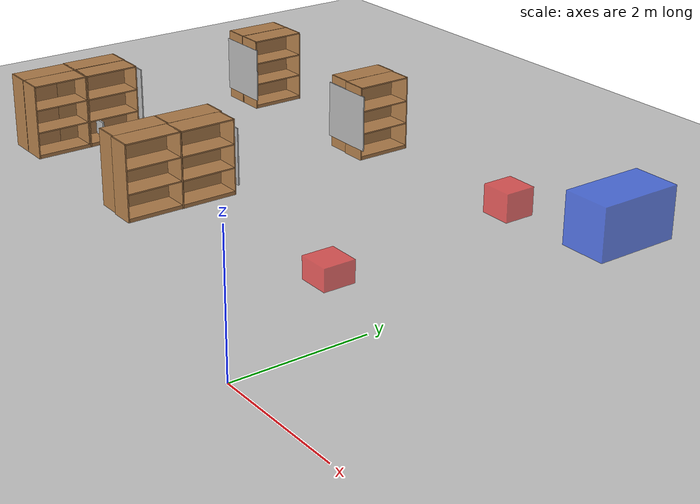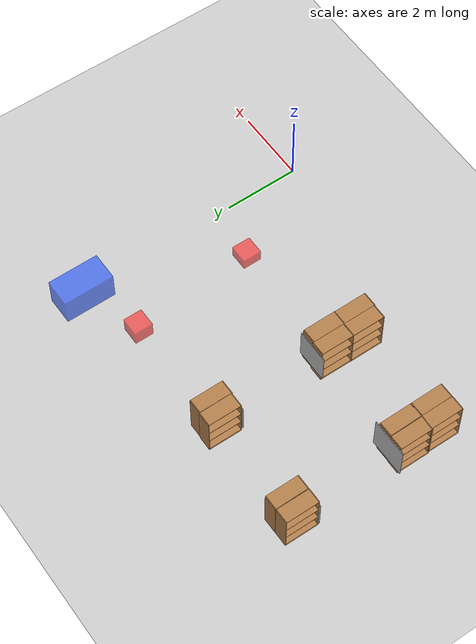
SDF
<sdf version="1.7">
 <world name="library_world">
  <model name="ground_plane">
   <static>1</static>
   <link name="link">
    <collision name="collision">
     <geometry><plane><normal>0 0 1</normal><size>100 100</size></plane></geometry>
     <surface>
      <contact><collide_bitmask>65535</collide_bitmask></contact>
      <friction><ode><mu>100</mu><mu2>50</mu2></ode></friction>
     </surface>
    </collision>
    <visual name="visual">
     <cast_shadows>0</cast_shadows>
     <geometry><plane><normal>0 0 1</normal><size>100 100</size></plane></geometry>
     <material>
      <script><uri>file://media/materials/scripts/gazebo.material</uri><name>Gazebo/Grey</name></script>
     </material>
    </visual>
   </link>
  </model>
  <model name="bookshelf_0_clone_2_clone_2">
   <static>1</static>
   <link name="link">
    <inertial><mass>1</mass></inertial>
    <collision name="back">
     <pose>0 0.005 0.6 0 -0 0</pose>
     <geometry><box><size>0.9 0.01 1.2</size></box></geometry>
    </collision>
    <visual name="visual1">
     <pose>0 0.005 0.6 0 -0 0</pose>
     <geometry><box><size>0.9 0.01 1.2</size></box></geometry>
     <material>
      <script><uri>file://media/materials/scripts/gazebo.material</uri><name>Gazebo/Wood</name></script>
     </material>
    </visual>
    <collision name="left_side">
     <pose>0.45 -0.195 0.6 0 -0 0</pose>
     <geometry><box><size>0.02 0.4 1.2</size></box></geometry>
    </collision>
    <visual name="visual2">
     <pose>0.45 -0.195 0.6 0 -0 0</pose>
     <geometry><box><size>0.02 0.4 1.2</size></box></geometry>
     <material>
      <script><uri>file://media/materials/scripts/gazebo.material</uri><name>Gazebo/Wood</name></script>
     </material>
    </visual>
    <collision name="right_side">
     <pose>-0.45 -0.195 0.6 0 -0 0</pose>
     <geometry><box><size>0.02 0.4 1.2</size></box></geometry>
    </collision>
    <visual name="visual3">
     <pose>-0.45 -0.195 0.6 0 -0 0</pose>
     <geometry><box><size>0.02 0.4 1.2</size></box></geometry>
     <material>
      <script><uri>file://media/materials/scripts/gazebo.material</uri><name>Gazebo/Wood</name></script>
     </material>
    </visual>
    <collision name="bottom">
     <pose>0 -0.195 0.03 0 -0 0</pose>
     <geometry><box><size>0.88 0.4 0.06</size></box></geometry>
    </collision>
    <visual name="visual4">
     <pose>0 -0.195 0.03 0 -0 0</pose>
     <geometry><box><size>0.88 0.4 0.06</size></box></geometry>
     <material>
      <script><uri>file://media/materials/scripts/gazebo.material</uri><name>Gazebo/Wood</name></script>
     </material>
    </visual>
    <collision name="top">
     <pose>0 -0.195 1.19 0 -0 0</pose>
     <geometry><box><size>0.88 0.4 0.02</size></box></geometry>
    </collision>
    <visual name="visual5">
     <pose>0 -0.195 1.19 0 -0 0</pose>
     <geometry><box><size>0.88 0.4 0.02</size></box></geometry>
     <material>
      <script><uri>file://media/materials/scripts/gazebo.material</uri><name>Gazebo/Wood</name></script>
     </material>
    </visual>
    <collision name="low_shelf">
     <pose>0 -0.195 0.43 0 -0 0</pose>
     <geometry><box><size>0.88 0.4 0.02</size></box></geometry>
    </collision>
    <visual name="visual6">
     <pose>0 -0.195 0.43 0 -0 0</pose>
     <geometry><box><size>0.88 0.4 0.02</size></box></geometry>
     <material>
      <script><uri>file://media/materials/scripts/gazebo.material</uri><name>Gazebo/Wood</name></script>
     </material>
    </visual>
    <collision name="high_shelf">
     <pose>0 -0.195 0.8 0 -0 0</pose>
     <geometry><box><size>0.88 0.4 0.02</size></box></geometry>
    </collision>
    <visual name="visual7">
     <pose>0 -0.195 0.8 0 -0 0</pose>
     <geometry><box><size>0.88 0.4 0.02</size></box></geometry>
     <material>
      <script><uri>file://media/materials/scripts/gazebo.material</uri><name>Gazebo/Wood</name></script>
     </material>
    </visual>
   </link>
   <pose>-7.9838 5.79924 0 0 -0 1.57381</pose>
  </model>
  <model name="bookshelf_0_clone_8_clone_2">
   <static>1</static>
   <link name="link">
    <inertial><mass>1</mass></inertial>
    <collision name="back">
     <pose>0 0.005 0.6 0 -0 0</pose>
     <geometry><box><size>0.9 0.01 1.2</size></box></geometry>
    </collision>
    <visual name="visual1">
     <pose>0 0.005 0.6 0 -0 0</pose>
     <geometry><box><size>0.9 0.01 1.2</size></box></geometry>
     <material>
      <script><uri>file://media/materials/scripts/gazebo.material</uri><name>Gazebo/Wood</name></script>
     </material>
    </visual>
    <collision name="left_side">
     <pose>0.45 -0.195 0.6 0 -0 0</pose>
     <geometry><box><size>0.02 0.4 1.2</size></box></geometry>
    </collision>
    <visual name="visual2">
     <pose>0.45 -0.195 0.6 0 -0 0</pose>
     <geometry><box><size>0.02 0.4 1.2</size></box></geometry>
     <material>
      <script><uri>file://media/materials/scripts/gazebo.material</uri><name>Gazebo/Wood</name></script>
     </material>
    </visual>
    <collision name="right_side">
     <pose>-0.45 -0.195 0.6 0 -0 0</pose>
     <geometry><box><size>0.02 0.4 1.2</size></box></geometry>
    </collision>
    <visual name="visual3">
     <pose>-0.45 -0.195 0.6 0 -0 0</pose>
     <geometry><box><size>0.02 0.4 1.2</size></box></geometry>
     <material>
      <script><uri>file://media/materials/scripts/gazebo.material</uri><name>Gazebo/Wood</name></script>
     </material>
    </visual>
    <collision name="bottom">
     <pose>0 -0.195 0.03 0 -0 0</pose>
     <geometry><box><size>0.88 0.4 0.06</size></box></geometry>
    </collision>
    <visual name="visual4">
     <pose>0 -0.195 0.03 0 -0 0</pose>
     <geometry><box><size>0.88 0.4 0.06</size></box></geometry>
     <material>
      <script><uri>file://media/materials/scripts/gazebo.material</uri><name>Gazebo/Wood</name></script>
     </material>
    </visual>
    <collision name="top">
     <pose>0 -0.195 1.19 0 -0 0</pose>
     <geometry><box><size>0.88 0.4 0.02</size></box></geometry>
    </collision>
    <visual name="visual5">
     <pose>0 -0.195 1.19 0 -0 0</pose>
     <geometry><box><size>0.88 0.4 0.02</size></box></geometry>
     <material>
      <script><uri>file://media/materials/scripts/gazebo.material</uri><name>Gazebo/Wood</name></script>
     </material>
    </visual>
    <collision name="low_shelf">
     <pose>0 -0.195 0.43 0 -0 0</pose>
     <geometry><box><size>0.88 0.4 0.02</size></box></geometry>
    </collision>
    <visual name="visual6">
     <pose>0 -0.195 0.43 0 -0 0</pose>
     <geometry><box><size>0.88 0.4 0.02</size></box></geometry>
     <material>
      <script><uri>file://media/materials/scripts/gazebo.material</uri><name>Gazebo/Wood</name></script>
     </material>
    </visual>
    <collision name="high_shelf">
     <pose>0 -0.195 0.8 0 -0 0</pose>
     <geometry><box><size>0.88 0.4 0.02</size></box></geometry>
    </collision>
    <visual name="visual7">
     <pose>0 -0.195 0.8 0 -0 0</pose>
     <geometry><box><size>0.88 0.4 0.02</size></box></geometry>
     <material>
      <script><uri>file://media/materials/scripts/gazebo.material</uri><name>Gazebo/Wood</name></script>
     </material>
    </visual>
   </link>
   <pose>-8.00488 5.79635 0 0 0 -1.57537</pose>
  </model>
  <model name="bookshelf_0_clone_8_clone_7">
   <static>1</static>
   <link name="link">
    <inertial><mass>1</mass></inertial>
    <collision name="back">
     <pose>0 0.005 0.6 0 -0 0</pose>
     <geometry><box><size>0.9 0.01 1.2</size></box></geometry>
    </collision>
    <visual name="visual1">
     <pose>0 0.005 0.6 0 -0 0</pose>
     <geometry><box><size>0.9 0.01 1.2</size></box></geometry>
     <material>
      <script><uri>file://media/materials/scripts/gazebo.material</uri><name>Gazebo/Wood</name></script>
     </material>
    </visual>
    <collision name="left_side">
     <pose>0.45 -0.195 0.6 0 -0 0</pose>
     <geometry><box><size>0.02 0.4 1.2</size></box></geometry>
    </collision>
    <visual name="visual2">
     <pose>0.45 -0.195 0.6 0 -0 0</pose>
     <geometry><box><size>0.02 0.4 1.2</size></box></geometry>
     <material>
      <script><uri>file://media/materials/scripts/gazebo.material</uri><name>Gazebo/Wood</name></script>
     </material>
    </visual>
    <collision name="right_side">
     <pose>-0.45 -0.195 0.6 0 -0 0</pose>
     <geometry><box><size>0.02 0.4 1.2</size></box></geometry>
    </collision>
    <visual name="visual3">
     <pose>-0.45 -0.195 0.6 0 -0 0</pose>
     <geometry><box><size>0.02 0.4 1.2</size></box></geometry>
     <material>
      <script><uri>file://media/materials/scripts/gazebo.material</uri><name>Gazebo/Wood</name></script>
     </material>
    </visual>
    <collision name="bottom">
     <pose>0 -0.195 0.03 0 -0 0</pose>
     <geometry><box><size>0.88 0.4 0.06</size></box></geometry>
    </collision>
    <visual name="visual4">
     <pose>0 -0.195 0.03 0 -0 0</pose>
     <geometry><box><size>0.88 0.4 0.06</size></box></geometry>
     <material>
      <script><uri>file://media/materials/scripts/gazebo.material</uri><name>Gazebo/Wood</name></script>
     </material>
    </visual>
    <collision name="top">
     <pose>0 -0.195 1.19 0 -0 0</pose>
     <geometry><box><size>0.88 0.4 0.02</size></box></geometry>
    </collision>
    <visual name="visual5">
     <pose>0 -0.195 1.19 0 -0 0</pose>
     <geometry><box><size>0.88 0.4 0.02</size></box></geometry>
     <material>
      <script><uri>file://media/materials/scripts/gazebo.material</uri><name>Gazebo/Wood</name></script>
     </material>
    </visual>
    <collision name="low_shelf">
     <pose>0 -0.195 0.43 0 -0 0</pose>
     <geometry><box><size>0.88 0.4 0.02</size></box></geometry>
    </collision>
    <visual name="visual6">
     <pose>0 -0.195 0.43 0 -0 0</pose>
     <geometry><box><size>0.88 0.4 0.02</size></box></geometry>
     <material>
      <script><uri>file://media/materials/scripts/gazebo.material</uri><name>Gazebo/Wood</name></script>
     </material>
    </visual>
    <collision name="high_shelf">
     <pose>0 -0.195 0.8 0 -0 0</pose>
     <geometry><box><size>0.88 0.4 0.02</size></box></geometry>
    </collision>
    <visual name="visual7">
     <pose>0 -0.195 0.8 0 -0 0</pose>
     <geometry><box><size>0.88 0.4 0.02</size></box></geometry>
     <material>
      <script><uri>file://media/materials/scripts/gazebo.material</uri><name>Gazebo/Wood</name></script>
     </material>
    </visual>
   </link>
   <pose>-5.01238 5.82855 0 0 0 -1.57537</pose>
  </model>
  <model name="bookshelf_0_clone_2_clone_7">
   <static>1</static>
   <link name="link">
    <inertial><mass>1</mass></inertial>
    <collision name="back">
     <pose>0 0.005 0.6 0 -0 0</pose>
     <geometry><box><size>0.9 0.01 1.2</size></box></geometry>
    </collision>
    <visual name="visual1">
     <pose>0 0.005 0.6 0 -0 0</pose>
     <geometry><box><size>0.9 0.01 1.2</size></box></geometry>
     <material>
      <script><uri>file://media/materials/scripts/gazebo.material</uri><name>Gazebo/Wood</name></script>
     </material>
    </visual>
    <collision name="left_side">
     <pose>0.45 -0.195 0.6 0 -0 0</pose>
     <geometry><box><size>0.02 0.4 1.2</size></box></geometry>
    </collision>
    <visual name="visual2">
     <pose>0.45 -0.195 0.6 0 -0 0</pose>
     <geometry><box><size>0.02 0.4 1.2</size></box></geometry>
     <material>
      <script><uri>file://media/materials/scripts/gazebo.material</uri><name>Gazebo/Wood</name></script>
     </material>
    </visual>
    <collision name="right_side">
     <pose>-0.45 -0.195 0.6 0 -0 0</pose>
     <geometry><box><size>0.02 0.4 1.2</size></box></geometry>
    </collision>
    <visual name="visual3">
     <pose>-0.45 -0.195 0.6 0 -0 0</pose>
     <geometry><box><size>0.02 0.4 1.2</size></box></geometry>
     <material>
      <script><uri>file://media/materials/scripts/gazebo.material</uri><name>Gazebo/Wood</name></script>
     </material>
    </visual>
    <collision name="bottom">
     <pose>0 -0.195 0.03 0 -0 0</pose>
     <geometry><box><size>0.88 0.4 0.06</size></box></geometry>
    </collision>
    <visual name="visual4">
     <pose>0 -0.195 0.03 0 -0 0</pose>
     <geometry><box><size>0.88 0.4 0.06</size></box></geometry>
     <material>
      <script><uri>file://media/materials/scripts/gazebo.material</uri><name>Gazebo/Wood</name></script>
     </material>
    </visual>
    <collision name="top">
     <pose>0 -0.195 1.19 0 -0 0</pose>
     <geometry><box><size>0.88 0.4 0.02</size></box></geometry>
    </collision>
    <visual name="visual5">
     <pose>0 -0.195 1.19 0 -0 0</pose>
     <geometry><box><size>0.88 0.4 0.02</size></box></geometry>
     <material>
      <script><uri>file://media/materials/scripts/gazebo.material</uri><name>Gazebo/Wood</name></script>
     </material>
    </visual>
    <collision name="low_shelf">
     <pose>0 -0.195 0.43 0 -0 0</pose>
     <geometry><box><size>0.88 0.4 0.02</size></box></geometry>
    </collision>
    <visual name="visual6">
     <pose>0 -0.195 0.43 0 -0 0</pose>
     <geometry><box><size>0.88 0.4 0.02</size></box></geometry>
     <material>
      <script><uri>file://media/materials/scripts/gazebo.material</uri><name>Gazebo/Wood</name></script>
     </material>
    </visual>
    <collision name="high_shelf">
     <pose>0 -0.195 0.8 0 -0 0</pose>
     <geometry><box><size>0.88 0.4 0.02</size></box></geometry>
    </collision>
    <visual name="visual7">
     <pose>0 -0.195 0.8 0 -0 0</pose>
     <geometry><box><size>0.88 0.4 0.02</size></box></geometry>
     <material>
      <script><uri>file://media/materials/scripts/gazebo.material</uri><name>Gazebo/Wood</name></script>
     </material>
    </visual>
   </link>
   <pose>-5.00928 5.81214 0 0 -0 1.57381</pose>
  </model>
  <model name="bookshelf_0_clone_2_clone_19">
   <static>1</static>
   <link name="link">
    <inertial><mass>1</mass></inertial>
    <collision name="back">
     <pose>0 0.005 0.6 0 -0 0</pose>
     <geometry><box><size>0.9 0.01 1.2</size></box></geometry>
    </collision>
    <visual name="visual1">
     <pose>0 0.005 0.6 0 -0 0</pose>
     <geometry><box><size>0.9 0.01 1.2</size></box></geometry>
     <material>
      <script><uri>file://media/materials/scripts/gazebo.material</uri><name>Gazebo/Wood</name></script>
     </material>
    </visual>
    <collision name="left_side">
     <pose>0.45 -0.195 0.6 0 -0 0</pose>
     <geometry><box><size>0.02 0.4 1.2</size></box></geometry>
    </collision>
    <visual name="visual2">
     <pose>0.45 -0.195 0.6 0 -0 0</pose>
     <geometry><box><size>0.02 0.4 1.2</size></box></geometry>
     <material>
      <script><uri>file://media/materials/scripts/gazebo.material</uri><name>Gazebo/Wood</name></script>
     </material>
    </visual>
    <collision name="right_side">
     <pose>-0.45 -0.195 0.6 0 -0 0</pose>
     <geometry><box><size>0.02 0.4 1.2</size></box></geometry>
    </collision>
    <visual name="visual3">
     <pose>-0.45 -0.195 0.6 0 -0 0</pose>
     <geometry><box><size>0.02 0.4 1.2</size></box></geometry>
     <material>
      <script><uri>file://media/materials/scripts/gazebo.material</uri><name>Gazebo/Wood</name></script>
     </material>
    </visual>
    <collision name="bottom">
     <pose>0 -0.195 0.03 0 -0 0</pose>
     <geometry><box><size>0.88 0.4 0.06</size></box></geometry>
    </collision>
    <visual name="visual4">
     <pose>0 -0.195 0.03 0 -0 0</pose>
     <geometry><box><size>0.88 0.4 0.06</size></box></geometry>
     <material>
      <script><uri>file://media/materials/scripts/gazebo.material</uri><name>Gazebo/Wood</name></script>
     </material>
    </visual>
    <collision name="top">
     <pose>0 -0.195 1.19 0 -0 0</pose>
     <geometry><box><size>0.88 0.4 0.02</size></box></geometry>
    </collision>
    <visual name="visual5">
     <pose>0 -0.195 1.19 0 -0 0</pose>
     <geometry><box><size>0.88 0.4 0.02</size></box></geometry>
     <material>
      <script><uri>file://media/materials/scripts/gazebo.material</uri><name>Gazebo/Wood</name></script>
     </material>
    </visual>
    <collision name="low_shelf">
     <pose>0 -0.195 0.43 0 -0 0</pose>
     <geometry><box><size>0.88 0.4 0.02</size></box></geometry>
    </collision>
    <visual name="visual6">
     <pose>0 -0.195 0.43 0 -0 0</pose>
     <geometry><box><size>0.88 0.4 0.02</size></box></geometry>
     <material>
      <script><uri>file://media/materials/scripts/gazebo.material</uri><name>Gazebo/Wood</name></script>
     </material>
    </visual>
    <collision name="high_shelf">
     <pose>0 -0.195 0.8 0 -0 0</pose>
     <geometry><box><size>0.88 0.4 0.02</size></box></geometry>
    </collision>
    <visual name="visual7">
     <pose>0 -0.195 0.8 0 -0 0</pose>
     <geometry><box><size>0.88 0.4 0.02</size></box></geometry>
     <material>
      <script><uri>file://media/materials/scripts/gazebo.material</uri><name>Gazebo/Wood</name></script>
     </material>
    </visual>
   </link>
   <pose>-7.98645 2.59272 0 0 -0 1.57381</pose>
  </model>
  <model name="bookshelf_0_clone_2_clone_20">
   <static>1</static>
   <link name="link">
    <inertial><mass>1</mass></inertial>
    <collision name="back">
     <pose>0 0.005 0.6 0 -0 0</pose>
     <geometry><box><size>0.9 0.01 1.2</size></box></geometry>
    </collision>
    <visual name="visual1">
     <pose>0 0.005 0.6 0 -0 0</pose>
     <geometry><box><size>0.9 0.01 1.2</size></box></geometry>
     <material>
      <script><uri>file://media/materials/scripts/gazebo.material</uri><name>Gazebo/Wood</name></script>
     </material>
    </visual>
    <collision name="left_side">
     <pose>0.45 -0.195 0.6 0 -0 0</pose>
     <geometry><box><size>0.02 0.4 1.2</size></box></geometry>
    </collision>
    <visual name="visual2">
     <pose>0.45 -0.195 0.6 0 -0 0</pose>
     <geometry><box><size>0.02 0.4 1.2</size></box></geometry>
     <material>
      <script><uri>file://media/materials/scripts/gazebo.material</uri><name>Gazebo/Wood</name></script>
     </material>
    </visual>
    <collision name="right_side">
     <pose>-0.45 -0.195 0.6 0 -0 0</pose>
     <geometry><box><size>0.02 0.4 1.2</size></box></geometry>
    </collision>
    <visual name="visual3">
     <pose>-0.45 -0.195 0.6 0 -0 0</pose>
     <geometry><box><size>0.02 0.4 1.2</size></box></geometry>
     <material>
      <script><uri>file://media/materials/scripts/gazebo.material</uri><name>Gazebo/Wood</name></script>
     </material>
    </visual>
    <collision name="bottom">
     <pose>0 -0.195 0.03 0 -0 0</pose>
     <geometry><box><size>0.88 0.4 0.06</size></box></geometry>
    </collision>
    <visual name="visual4">
     <pose>0 -0.195 0.03 0 -0 0</pose>
     <geometry><box><size>0.88 0.4 0.06</size></box></geometry>
     <material>
      <script><uri>file://media/materials/scripts/gazebo.material</uri><name>Gazebo/Wood</name></script>
     </material>
    </visual>
    <collision name="top">
     <pose>0 -0.195 1.19 0 -0 0</pose>
     <geometry><box><size>0.88 0.4 0.02</size></box></geometry>
    </collision>
    <visual name="visual5">
     <pose>0 -0.195 1.19 0 -0 0</pose>
     <geometry><box><size>0.88 0.4 0.02</size></box></geometry>
     <material>
      <script><uri>file://media/materials/scripts/gazebo.material</uri><name>Gazebo/Wood</name></script>
     </material>
    </visual>
    <collision name="low_shelf">
     <pose>0 -0.195 0.43 0 -0 0</pose>
     <geometry><box><size>0.88 0.4 0.02</size></box></geometry>
    </collision>
    <visual name="visual6">
     <pose>0 -0.195 0.43 0 -0 0</pose>
     <geometry><box><size>0.88 0.4 0.02</size></box></geometry>
     <material>
      <script><uri>file://media/materials/scripts/gazebo.material</uri><name>Gazebo/Wood</name></script>
     </material>
    </visual>
    <collision name="high_shelf">
     <pose>0 -0.195 0.8 0 -0 0</pose>
     <geometry><box><size>0.88 0.4 0.02</size></box></geometry>
    </collision>
    <visual name="visual7">
     <pose>0 -0.195 0.8 0 -0 0</pose>
     <geometry><box><size>0.88 0.4 0.02</size></box></geometry>
     <material>
      <script><uri>file://media/materials/scripts/gazebo.material</uri><name>Gazebo/Wood</name></script>
     </material>
    </visual>
   </link>
   <pose>-7.98283 1.71617 0 0 -0 1.57381</pose>
  </model>
  <model name="bookshelf_0_clone_2_clone_24">
   <static>1</static>
   <link name="link">
    <inertial><mass>1</mass></inertial>
    <collision name="back">
     <pose>0 0.005 0.6 0 -0 0</pose>
     <geometry><box><size>0.9 0.01 1.2</size></box></geometry>
    </collision>
    <visual name="visual1">
     <pose>0 0.005 0.6 0 -0 0</pose>
     <geometry><box><size>0.9 0.01 1.2</size></box></geometry>
     <material>
      <script><uri>file://media/materials/scripts/gazebo.material</uri><name>Gazebo/Wood</name></script>
     </material>
    </visual>
    <collision name="left_side">
     <pose>0.45 -0.195 0.6 0 -0 0</pose>
     <geometry><box><size>0.02 0.4 1.2</size></box></geometry>
    </collision>
    <visual name="visual2">
     <pose>0.45 -0.195 0.6 0 -0 0</pose>
     <geometry><box><size>0.02 0.4 1.2</size></box></geometry>
     <material>
      <script><uri>file://media/materials/scripts/gazebo.material</uri><name>Gazebo/Wood</name></script>
     </material>
    </visual>
    <collision name="right_side">
     <pose>-0.45 -0.195 0.6 0 -0 0</pose>
     <geometry><box><size>0.02 0.4 1.2</size></box></geometry>
    </collision>
    <visual name="visual3">
     <pose>-0.45 -0.195 0.6 0 -0 0</pose>
     <geometry><box><size>0.02 0.4 1.2</size></box></geometry>
     <material>
      <script><uri>file://media/materials/scripts/gazebo.material</uri><name>Gazebo/Wood</name></script>
     </material>
    </visual>
    <collision name="bottom">
     <pose>0 -0.195 0.03 0 -0 0</pose>
     <geometry><box><size>0.88 0.4 0.06</size></box></geometry>
    </collision>
    <visual name="visual4">
     <pose>0 -0.195 0.03 0 -0 0</pose>
     <geometry><box><size>0.88 0.4 0.06</size></box></geometry>
     <material>
      <script><uri>file://media/materials/scripts/gazebo.material</uri><name>Gazebo/Wood</name></script>
     </material>
    </visual>
    <collision name="top">
     <pose>0 -0.195 1.19 0 -0 0</pose>
     <geometry><box><size>0.88 0.4 0.02</size></box></geometry>
    </collision>
    <visual name="visual5">
     <pose>0 -0.195 1.19 0 -0 0</pose>
     <geometry><box><size>0.88 0.4 0.02</size></box></geometry>
     <material>
      <script><uri>file://media/materials/scripts/gazebo.material</uri><name>Gazebo/Wood</name></script>
     </material>
    </visual>
    <collision name="low_shelf">
     <pose>0 -0.195 0.43 0 -0 0</pose>
     <geometry><box><size>0.88 0.4 0.02</size></box></geometry>
    </collision>
    <visual name="visual6">
     <pose>0 -0.195 0.43 0 -0 0</pose>
     <geometry><box><size>0.88 0.4 0.02</size></box></geometry>
     <material>
      <script><uri>file://media/materials/scripts/gazebo.material</uri><name>Gazebo/Wood</name></script>
     </material>
    </visual>
    <collision name="high_shelf">
     <pose>0 -0.195 0.8 0 -0 0</pose>
     <geometry><box><size>0.88 0.4 0.02</size></box></geometry>
    </collision>
    <visual name="visual7">
     <pose>0 -0.195 0.8 0 -0 0</pose>
     <geometry><box><size>0.88 0.4 0.02</size></box></geometry>
     <material>
      <script><uri>file://media/materials/scripts/gazebo.material</uri><name>Gazebo/Wood</name></script>
     </material>
    </visual>
   </link>
   <pose>-4.98388 2.56453 0 0 -0 1.57381</pose>
  </model>
  <model name="bookshelf_0_clone_2_clone_25">
   <static>1</static>
   <link name="link">
    <inertial><mass>1</mass></inertial>
    <collision name="back">
     <pose>0 0.005 0.6 0 -0 0</pose>
     <geometry><box><size>0.9 0.01 1.2</size></box></geometry>
    </collision>
    <visual name="visual1">
     <pose>0 0.005 0.6 0 -0 0</pose>
     <geometry><box><size>0.9 0.01 1.2</size></box></geometry>
     <material>
      <script><uri>file://media/materials/scripts/gazebo.material</uri><name>Gazebo/Wood</name></script>
     </material>
    </visual>
    <collision name="left_side">
     <pose>0.45 -0.195 0.6 0 -0 0</pose>
     <geometry><box><size>0.02 0.4 1.2</size></box></geometry>
    </collision>
    <visual name="visual2">
     <pose>0.45 -0.195 0.6 0 -0 0</pose>
     <geometry><box><size>0.02 0.4 1.2</size></box></geometry>
     <material>
      <script><uri>file://media/materials/scripts/gazebo.material</uri><name>Gazebo/Wood</name></script>
     </material>
    </visual>
    <collision name="right_side">
     <pose>-0.45 -0.195 0.6 0 -0 0</pose>
     <geometry><box><size>0.02 0.4 1.2</size></box></geometry>
    </collision>
    <visual name="visual3">
     <pose>-0.45 -0.195 0.6 0 -0 0</pose>
     <geometry><box><size>0.02 0.4 1.2</size></box></geometry>
     <material>
      <script><uri>file://media/materials/scripts/gazebo.material</uri><name>Gazebo/Wood</name></script>
     </material>
    </visual>
    <collision name="bottom">
     <pose>0 -0.195 0.03 0 -0 0</pose>
     <geometry><box><size>0.88 0.4 0.06</size></box></geometry>
    </collision>
    <visual name="visual4">
     <pose>0 -0.195 0.03 0 -0 0</pose>
     <geometry><box><size>0.88 0.4 0.06</size></box></geometry>
     <material>
      <script><uri>file://media/materials/scripts/gazebo.material</uri><name>Gazebo/Wood</name></script>
     </material>
    </visual>
    <collision name="top">
     <pose>0 -0.195 1.19 0 -0 0</pose>
     <geometry><box><size>0.88 0.4 0.02</size></box></geometry>
    </collision>
    <visual name="visual5">
     <pose>0 -0.195 1.19 0 -0 0</pose>
     <geometry><box><size>0.88 0.4 0.02</size></box></geometry>
     <material>
      <script><uri>file://media/materials/scripts/gazebo.material</uri><name>Gazebo/Wood</name></script>
     </material>
    </visual>
    <collision name="low_shelf">
     <pose>0 -0.195 0.43 0 -0 0</pose>
     <geometry><box><size>0.88 0.4 0.02</size></box></geometry>
    </collision>
    <visual name="visual6">
     <pose>0 -0.195 0.43 0 -0 0</pose>
     <geometry><box><size>0.88 0.4 0.02</size></box></geometry>
     <material>
      <script><uri>file://media/materials/scripts/gazebo.material</uri><name>Gazebo/Wood</name></script>
     </material>
    </visual>
    <collision name="high_shelf">
     <pose>0 -0.195 0.8 0 -0 0</pose>
     <geometry><box><size>0.88 0.4 0.02</size></box></geometry>
    </collision>
    <visual name="visual7">
     <pose>0 -0.195 0.8 0 -0 0</pose>
     <geometry><box><size>0.88 0.4 0.02</size></box></geometry>
     <material>
      <script><uri>file://media/materials/scripts/gazebo.material</uri><name>Gazebo/Wood</name></script>
     </material>
    </visual>
   </link>
   <pose>-4.98749 1.67458 0 0 -0 1.57381</pose>
  </model>
  <model name="bookshelf_0_clone_8_clone_17_clone_10">
   <static>1</static>
   <link name="link">
    <inertial><mass>1</mass></inertial>
    <collision name="back">
     <pose>0 0.005 0.6 0 -0 0</pose>
     <geometry><box><size>0.9 0.01 1.2</size></box></geometry>
    </collision>
    <visual name="visual1">
     <pose>0 0.005 0.6 0 -0 0</pose>
     <geometry><box><size>0.9 0.01 1.2</size></box></geometry>
     <material>
      <script><uri>file://media/materials/scripts/gazebo.material</uri><name>Gazebo/Wood</name></script>
     </material>
    </visual>
    <collision name="left_side">
     <pose>0.45 -0.195 0.6 0 -0 0</pose>
     <geometry><box><size>0.02 0.4 1.2</size></box></geometry>
    </collision>
    <visual name="visual2">
     <pose>0.45 -0.195 0.6 0 -0 0</pose>
     <geometry><box><size>0.02 0.4 1.2</size></box></geometry>
     <material>
      <script><uri>file://media/materials/scripts/gazebo.material</uri><name>Gazebo/Wood</name></script>
     </material>
    </visual>
    <collision name="right_side">
     <pose>-0.45 -0.195 0.6 0 -0 0</pose>
     <geometry><box><size>0.02 0.4 1.2</size></box></geometry>
    </collision>
    <visual name="visual3">
     <pose>-0.45 -0.195 0.6 0 -0 0</pose>
     <geometry><box><size>0.02 0.4 1.2</size></box></geometry>
     <material>
      <script><uri>file://media/materials/scripts/gazebo.material</uri><name>Gazebo/Wood</name></script>
     </material>
    </visual>
    <collision name="bottom">
     <pose>0 -0.195 0.03 0 -0 0</pose>
     <geometry><box><size>0.88 0.4 0.06</size></box></geometry>
    </collision>
    <visual name="visual4">
     <pose>0 -0.195 0.03 0 -0 0</pose>
     <geometry><box><size>0.88 0.4 0.06</size></box></geometry>
     <material>
      <script><uri>file://media/materials/scripts/gazebo.material</uri><name>Gazebo/Wood</name></script>
     </material>
    </visual>
    <collision name="top">
     <pose>0 -0.195 1.19 0 -0 0</pose>
     <geometry><box><size>0.88 0.4 0.02</size></box></geometry>
    </collision>
    <visual name="visual5">
     <pose>0 -0.195 1.19 0 -0 0</pose>
     <geometry><box><size>0.88 0.4 0.02</size></box></geometry>
     <material>
      <script><uri>file://media/materials/scripts/gazebo.material</uri><name>Gazebo/Wood</name></script>
     </material>
    </visual>
    <collision name="low_shelf">
     <pose>0 -0.195 0.43 0 -0 0</pose>
     <geometry><box><size>0.88 0.4 0.02</size></box></geometry>
    </collision>
    <visual name="visual6">
     <pose>0 -0.195 0.43 0 -0 0</pose>
     <geometry><box><size>0.88 0.4 0.02</size></box></geometry>
     <material>
      <script><uri>file://media/materials/scripts/gazebo.material</uri><name>Gazebo/Wood</name></script>
     </material>
    </visual>
    <collision name="high_shelf">
     <pose>0 -0.195 0.8 0 -0 0</pose>
     <geometry><box><size>0.88 0.4 0.02</size></box></geometry>
    </collision>
    <visual name="visual7">
     <pose>0 -0.195 0.8 0 -0 0</pose>
     <geometry><box><size>0.88 0.4 0.02</size></box></geometry>
     <material>
      <script><uri>file://media/materials/scripts/gazebo.material</uri><name>Gazebo/Wood</name></script>
     </material>
    </visual>
   </link>
   <pose>-4.9867 2.59177 0 0 0 -1.57537</pose>
  </model>
  <model name="bookshelf_0_clone_8_clone_17_clone_11">
   <static>1</static>
   <link name="link">
    <inertial><mass>1</mass></inertial>
    <collision name="back">
     <pose>0 0.005 0.6 0 -0 0</pose>
     <geometry><box><size>0.9 0.01 1.2</size></box></geometry>
    </collision>
    <visual name="visual1">
     <pose>0 0.005 0.6 0 -0 0</pose>
     <geometry><box><size>0.9 0.01 1.2</size></box></geometry>
     <material>
      <script><uri>file://media/materials/scripts/gazebo.material</uri><name>Gazebo/Wood</name></script>
     </material>
    </visual>
    <collision name="left_side">
     <pose>0.45 -0.195 0.6 0 -0 0</pose>
     <geometry><box><size>0.02 0.4 1.2</size></box></geometry>
    </collision>
    <visual name="visual2">
     <pose>0.45 -0.195 0.6 0 -0 0</pose>
     <geometry><box><size>0.02 0.4 1.2</size></box></geometry>
     <material>
      <script><uri>file://media/materials/scripts/gazebo.material</uri><name>Gazebo/Wood</name></script>
     </material>
    </visual>
    <collision name="right_side">
     <pose>-0.45 -0.195 0.6 0 -0 0</pose>
     <geometry><box><size>0.02 0.4 1.2</size></box></geometry>
    </collision>
    <visual name="visual3">
     <pose>-0.45 -0.195 0.6 0 -0 0</pose>
     <geometry><box><size>0.02 0.4 1.2</size></box></geometry>
     <material>
      <script><uri>file://media/materials/scripts/gazebo.material</uri><name>Gazebo/Wood</name></script>
     </material>
    </visual>
    <collision name="bottom">
     <pose>0 -0.195 0.03 0 -0 0</pose>
     <geometry><box><size>0.88 0.4 0.06</size></box></geometry>
    </collision>
    <visual name="visual4">
     <pose>0 -0.195 0.03 0 -0 0</pose>
     <geometry><box><size>0.88 0.4 0.06</size></box></geometry>
     <material>
      <script><uri>file://media/materials/scripts/gazebo.material</uri><name>Gazebo/Wood</name></script>
     </material>
    </visual>
    <collision name="top">
     <pose>0 -0.195 1.19 0 -0 0</pose>
     <geometry><box><size>0.88 0.4 0.02</size></box></geometry>
    </collision>
    <visual name="visual5">
     <pose>0 -0.195 1.19 0 -0 0</pose>
     <geometry><box><size>0.88 0.4 0.02</size></box></geometry>
     <material>
      <script><uri>file://media/materials/scripts/gazebo.material</uri><name>Gazebo/Wood</name></script>
     </material>
    </visual>
    <collision name="low_shelf">
     <pose>0 -0.195 0.43 0 -0 0</pose>
     <geometry><box><size>0.88 0.4 0.02</size></box></geometry>
    </collision>
    <visual name="visual6">
     <pose>0 -0.195 0.43 0 -0 0</pose>
     <geometry><box><size>0.88 0.4 0.02</size></box></geometry>
     <material>
      <script><uri>file://media/materials/scripts/gazebo.material</uri><name>Gazebo/Wood</name></script>
     </material>
    </visual>
    <collision name="high_shelf">
     <pose>0 -0.195 0.8 0 -0 0</pose>
     <geometry><box><size>0.88 0.4 0.02</size></box></geometry>
    </collision>
    <visual name="visual7">
     <pose>0 -0.195 0.8 0 -0 0</pose>
     <geometry><box><size>0.88 0.4 0.02</size></box></geometry>
     <material>
      <script><uri>file://media/materials/scripts/gazebo.material</uri><name>Gazebo/Wood</name></script>
     </material>
    </visual>
   </link>
   <pose>-4.9947 1.6939 0 0 0 -1.57537</pose>
  </model>
  <model name="bookshelf_0_clone_8_clone_17_clone_15">
   <static>1</static>
   <link name="link">
    <inertial><mass>1</mass></inertial>
    <collision name="back">
     <pose>0 0.005 0.6 0 -0 0</pose>
     <geometry><box><size>0.9 0.01 1.2</size></box></geometry>
    </collision>
    <visual name="visual1">
     <pose>0 0.005 0.6 0 -0 0</pose>
     <geometry><box><size>0.9 0.01 1.2</size></box></geometry>
     <material>
      <script><uri>file://media/materials/scripts/gazebo.material</uri><name>Gazebo/Wood</name></script>
     </material>
    </visual>
    <collision name="left_side">
     <pose>0.45 -0.195 0.6 0 -0 0</pose>
     <geometry><box><size>0.02 0.4 1.2</size></box></geometry>
    </collision>
    <visual name="visual2">
     <pose>0.45 -0.195 0.6 0 -0 0</pose>
     <geometry><box><size>0.02 0.4 1.2</size></box></geometry>
     <material>
      <script><uri>file://media/materials/scripts/gazebo.material</uri><name>Gazebo/Wood</name></script>
     </material>
    </visual>
    <collision name="right_side">
     <pose>-0.45 -0.195 0.6 0 -0 0</pose>
     <geometry><box><size>0.02 0.4 1.2</size></box></geometry>
    </collision>
    <visual name="visual3">
     <pose>-0.45 -0.195 0.6 0 -0 0</pose>
     <geometry><box><size>0.02 0.4 1.2</size></box></geometry>
     <material>
      <script><uri>file://media/materials/scripts/gazebo.material</uri><name>Gazebo/Wood</name></script>
     </material>
    </visual>
    <collision name="bottom">
     <pose>0 -0.195 0.03 0 -0 0</pose>
     <geometry><box><size>0.88 0.4 0.06</size></box></geometry>
    </collision>
    <visual name="visual4">
     <pose>0 -0.195 0.03 0 -0 0</pose>
     <geometry><box><size>0.88 0.4 0.06</size></box></geometry>
     <material>
      <script><uri>file://media/materials/scripts/gazebo.material</uri><name>Gazebo/Wood</name></script>
     </material>
    </visual>
    <collision name="top">
     <pose>0 -0.195 1.19 0 -0 0</pose>
     <geometry><box><size>0.88 0.4 0.02</size></box></geometry>
    </collision>
    <visual name="visual5">
     <pose>0 -0.195 1.19 0 -0 0</pose>
     <geometry><box><size>0.88 0.4 0.02</size></box></geometry>
     <material>
      <script><uri>file://media/materials/scripts/gazebo.material</uri><name>Gazebo/Wood</name></script>
     </material>
    </visual>
    <collision name="low_shelf">
     <pose>0 -0.195 0.43 0 -0 0</pose>
     <geometry><box><size>0.88 0.4 0.02</size></box></geometry>
    </collision>
    <visual name="visual6">
     <pose>0 -0.195 0.43 0 -0 0</pose>
     <geometry><box><size>0.88 0.4 0.02</size></box></geometry>
     <material>
      <script><uri>file://media/materials/scripts/gazebo.material</uri><name>Gazebo/Wood</name></script>
     </material>
    </visual>
    <collision name="high_shelf">
     <pose>0 -0.195 0.8 0 -0 0</pose>
     <geometry><box><size>0.88 0.4 0.02</size></box></geometry>
    </collision>
    <visual name="visual7">
     <pose>0 -0.195 0.8 0 -0 0</pose>
     <geometry><box><size>0.88 0.4 0.02</size></box></geometry>
     <material>
      <script><uri>file://media/materials/scripts/gazebo.material</uri><name>Gazebo/Wood</name></script>
     </material>
    </visual>
   </link>
   <pose>-8.01128 2.60258 0 0 0 -1.57537</pose>
  </model>
  <model name="bookshelf_0_clone_8_clone_17_clone_16">
   <static>1</static>
   <link name="link">
    <inertial><mass>1</mass></inertial>
    <collision name="back">
     <pose>0 0.005 0.6 0 -0 0</pose>
     <geometry><box><size>0.9 0.01 1.2</size></box></geometry>
    </collision>
    <visual name="visual1">
     <pose>0 0.005 0.6 0 -0 0</pose>
     <geometry><box><size>0.9 0.01 1.2</size></box></geometry>
     <material>
      <script><uri>file://media/materials/scripts/gazebo.material</uri><name>Gazebo/Wood</name></script>
     </material>
    </visual>
    <collision name="left_side">
     <pose>0.45 -0.195 0.6 0 -0 0</pose>
     <geometry><box><size>0.02 0.4 1.2</size></box></geometry>
    </collision>
    <visual name="visual2">
     <pose>0.45 -0.195 0.6 0 -0 0</pose>
     <geometry><box><size>0.02 0.4 1.2</size></box></geometry>
     <material>
      <script><uri>file://media/materials/scripts/gazebo.material</uri><name>Gazebo/Wood</name></script>
     </material>
    </visual>
    <collision name="right_side">
     <pose>-0.45 -0.195 0.6 0 -0 0</pose>
     <geometry><box><size>0.02 0.4 1.2</size></box></geometry>
    </collision>
    <visual name="visual3">
     <pose>-0.45 -0.195 0.6 0 -0 0</pose>
     <geometry><box><size>0.02 0.4 1.2</size></box></geometry>
     <material>
      <script><uri>file://media/materials/scripts/gazebo.material</uri><name>Gazebo/Wood</name></script>
     </material>
    </visual>
    <collision name="bottom">
     <pose>0 -0.195 0.03 0 -0 0</pose>
     <geometry><box><size>0.88 0.4 0.06</size></box></geometry>
    </collision>
    <visual name="visual4">
     <pose>0 -0.195 0.03 0 -0 0</pose>
     <geometry><box><size>0.88 0.4 0.06</size></box></geometry>
     <material>
      <script><uri>file://media/materials/scripts/gazebo.material</uri><name>Gazebo/Wood</name></script>
     </material>
    </visual>
    <collision name="top">
     <pose>0 -0.195 1.19 0 -0 0</pose>
     <geometry><box><size>0.88 0.4 0.02</size></box></geometry>
    </collision>
    <visual name="visual5">
     <pose>0 -0.195 1.19 0 -0 0</pose>
     <geometry><box><size>0.88 0.4 0.02</size></box></geometry>
     <material>
      <script><uri>file://media/materials/scripts/gazebo.material</uri><name>Gazebo/Wood</name></script>
     </material>
    </visual>
    <collision name="low_shelf">
     <pose>0 -0.195 0.43 0 -0 0</pose>
     <geometry><box><size>0.88 0.4 0.02</size></box></geometry>
    </collision>
    <visual name="visual6">
     <pose>0 -0.195 0.43 0 -0 0</pose>
     <geometry><box><size>0.88 0.4 0.02</size></box></geometry>
     <material>
      <script><uri>file://media/materials/scripts/gazebo.material</uri><name>Gazebo/Wood</name></script>
     </material>
    </visual>
    <collision name="high_shelf">
     <pose>0 -0.195 0.8 0 -0 0</pose>
     <geometry><box><size>0.88 0.4 0.02</size></box></geometry>
    </collision>
    <visual name="visual7">
     <pose>0 -0.195 0.8 0 -0 0</pose>
     <geometry><box><size>0.88 0.4 0.02</size></box></geometry>
     <material>
      <script><uri>file://media/materials/scripts/gazebo.material</uri><name>Gazebo/Wood</name></script>
     </material>
    </visual>
   </link>
   <pose>-7.99364 1.71243 0 0 0 -1.57537</pose>
  </model>
  <model name="book_2_clone_clone_1_clone">
   <static>1</static>
   <link name="link">
    <visual name="visual"><geometry><box><size>0.221094 0.032318 0.244099</size></box></geometry></visual>
   </link>
   <pose>-7.87274 2.48938 0.179005 0 -0 0</pose>
  </model>
  <model name="book_2_clone_clone_1_clone_clone">
   <static>1</static>
   <link name="link">
    <visual name="visual"><geometry><box><size>0.221094 0.032318 0.244099</size></box></geometry></visual>
   </link>
   <pose>-8.12364 1.75961 0.179005 0 -0 0</pose>
  </model>
  <model name="nav_visible_block_Chair_clone_0_clone_0">
   <static>1</static>
   <pose>-1.47256 2.47746 0.081173 0 -0 0</pose>
   <link name="link">
    <collision name="collision">
     <geometry><box><size>0.5 0.5 0.5</size></box></geometry>
     <surface>
      <contact><collide_bitmask>65535</collide_bitmask></contact>
      <friction><ode><mu>1</mu><mu2>1</mu2></ode></friction>
     </surface>
    </collision>
    <visual name="visual">
     <transparency>0.35</transparency>
     <geometry><box><size>0.5 0.5 0.5</size></box></geometry>
     <material><ambient>1 0.15 0.15 1</ambient><diffuse>1 0.15 0.15 1</diffuse></material>
    </visual>
   </link>
  </model>
  <model name="nav_visible_block_Chair_clone_0_clone_3">
   <static>1</static>
   <pose>-1.74364 5.86388 0.183394 0 -0 0</pose>
   <link name="link">
    <collision name="collision">
     <geometry><box><size>0.5 0.5 0.499999</size></box></geometry>
     <surface>
      <contact><collide_bitmask>65535</collide_bitmask></contact>
      <friction><ode><mu>1</mu><mu2>1</mu2></ode></friction>
     </surface>
    </collision>
    <visual name="visual">
     <transparency>0.35</transparency>
     <geometry><box><size>0.5 0.5 0.499999</size></box></geometry>
     <material><ambient>1 0.15 0.15 1</ambient><diffuse>1 0.15 0.15 1</diffuse></material>
    </visual>
   </link>
  </model>
  <model name="nav_visible_block_table_clone_3_clone_3">
   <static>1</static>
   <pose>-0.142363 6.44933 0.25 0 0 -1.56857</pose>
   <link name="link">
    <collision name="collision">
     <geometry><box><size>1.36858 0.75 1.11496</size></box></geometry>
     <surface>
      <contact><collide_bitmask>65535</collide_bitmask></contact>
      <friction><ode><mu>1</mu><mu2>1</mu2></ode></friction>
     </surface>
    </collision>
    <visual name="visual">
     <transparency>0.35</transparency>
     <geometry><box><size>1.36858 0.75 1.11496</size></box></geometry>
     <material><ambient>0.1 0.3 1 1</ambient><diffuse>0.1 0.3 1 1</diffuse></material>
    </visual>
   </link>
  </model>
  <model name="qr_bookshelf_1">
   <static>1</static>
   <pose>-7.99571 5.34376 0.604042 0 -0 0</pose>
   <link name="qr_bookshelf_1_link">
    <visual name="qr_bookshelf_1_visual">
     <geometry><box><size>0.9 0.02 0.9</size></box></geometry>
     <material>
      <script>
       <uri>model://qr_bookshelf_1/materials/scripts</uri>
       <uri>model://qr_bookshelf_1/materials/textures</uri>
       <name>QR/Bookshelf1</name>
      </script>
     </material>
    </visual>
   </link>
  </model>
  <model name="qr_bookshelf_2">
   <static>1</static>
   <pose>-4.99986 5.36121 0.621293 0 -0 0</pose>
   <link name="qr_bookshelf_2_link">
    <visual name="qr_bookshelf_2_visual">
     <geometry><box><size>0.9 0.02 0.9</size></box></geometry>
     <material>
      <script>
       <uri>model://qr_bookshelf_2/materials/scripts</uri>
       <uri>model://qr_bookshelf_2/materials/textures</uri>
       <name>QR/Bookshelf2</name>
      </script>
     </material>
    </visual>
   </link>
  </model>
  <model name="qr_bookshelf_3">
   <static>1</static>
   <pose>-8.00168 3.08397 0.66082 0 -0 0</pose>
   <link name="qr_bookshelf_3_link">
    <visual name="qr_bookshelf_3_visual">
     <geometry><box><size>1.01353 0.02 0.991764</size></box></geometry>
     <material>
      <script>
       <uri>model://qr_bookshelf_3/materials/scripts</uri>
       <uri>model://qr_bookshelf_3/materials/textures</uri>
       <name>QR/Bookshelf3</name>
      </script>
     </material>
    </visual>
   </link>
  </model>
  <model name="qr_bookshelf_4">
   <static>1</static>
   <pose>-5.00166 3.0528 0.605151 0 -0 0</pose>
   <link name="qr_bookshelf_4_link">
    <visual name="qr_bookshelf_4_visual">
     <geometry><box><size>0.9 0.02 0.9</size></box></geometry>
     <material>
      <script>
       <uri>model://qr_bookshelf_4/materials/scripts</uri>
       <uri>model://qr_bookshelf_4/materials/textures</uri>
       <name>QR/Bookshelf4</name>
      </script>
     </material>
    </visual>
   </link>
  </model>
 </world>
</sdf>
